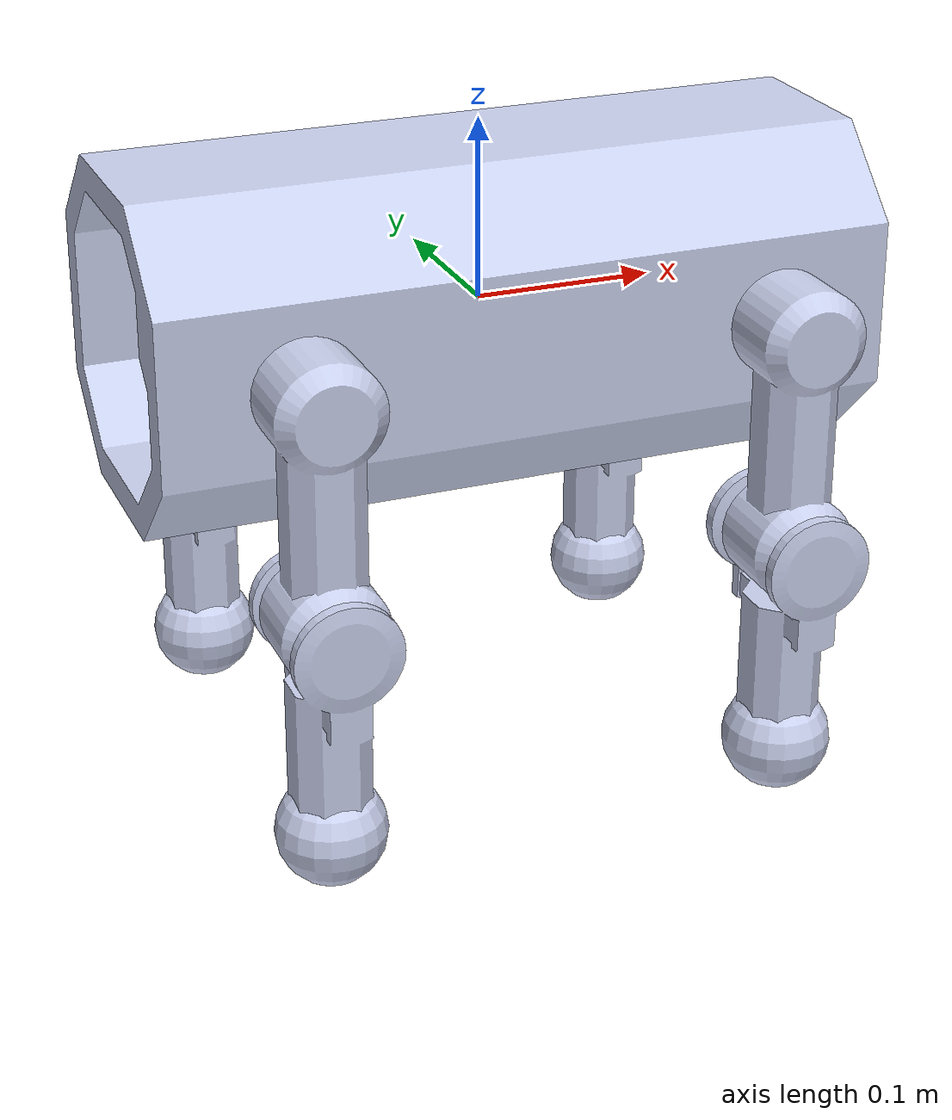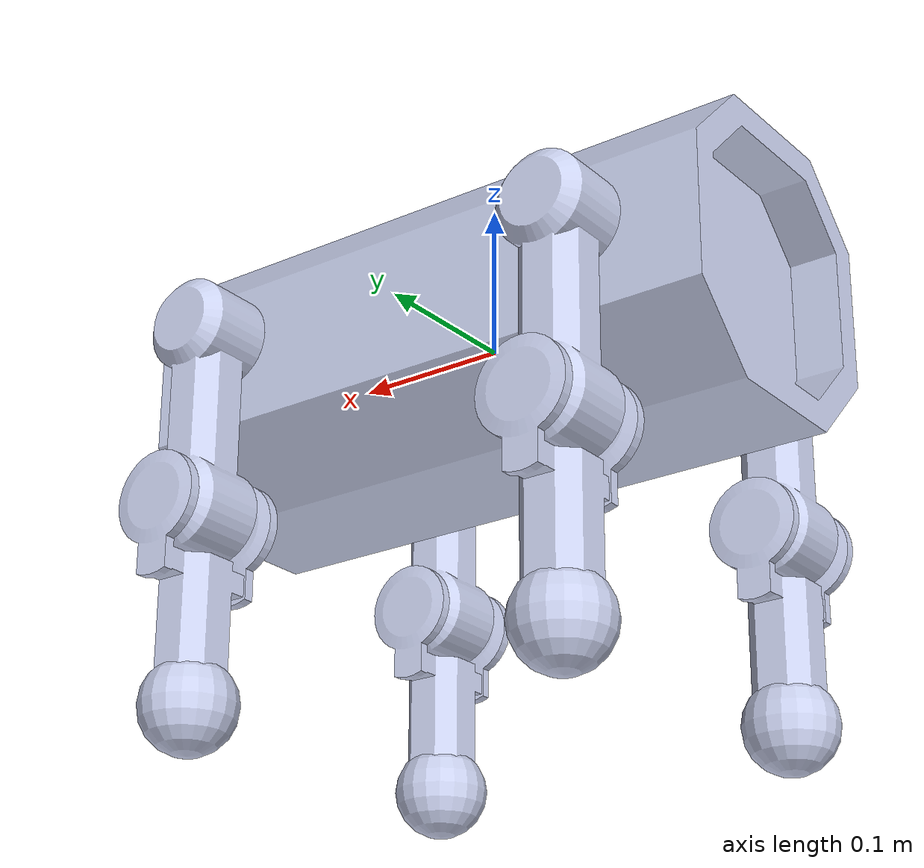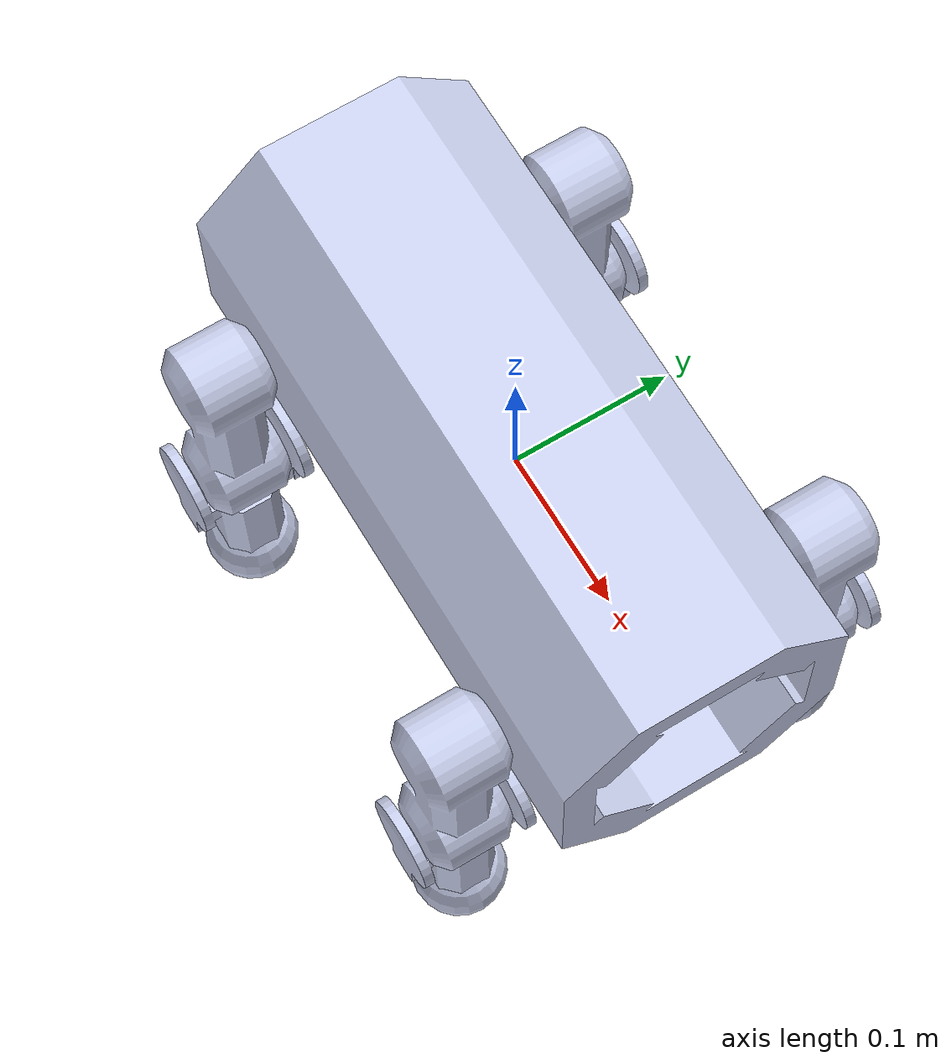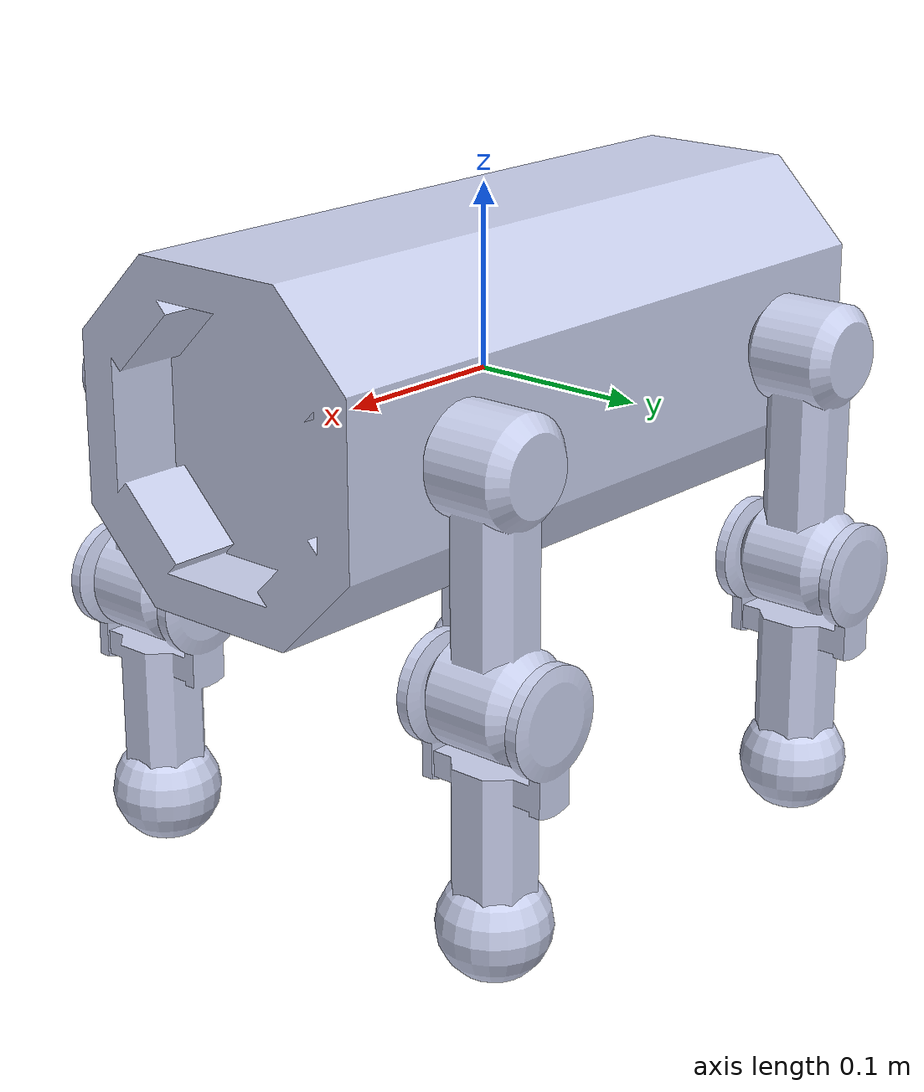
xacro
<?xml version="1.0"?>
<robot name="doggo_walker">

  <link name="base_link">
    <inertial>
      <origin xyz="0 0 0" rpy="0 0 0" />
      <mass value="1.4" />
      <inertia  ixx="0.93333333333333322e-3" ixy="0" ixz="0" iyy="0.7728466684691111e-3" iyz="0" izz="0.7728466684691111e-3" />
    </inertial>
    <visual>
      <origin xyz="0 0 0" rpy="0 0 0" />
      <geometry>
        <mesh filename="package://quad_walker/mesh/stl/body.stl" />
      </geometry>
      <material name="black">
        <color rgba="0.79216 0.81961 0.93333 1" />
      </material>
    </visual>
    <collision>
      <origin xyz="0 0 0" rpy="0 0 0" />
      <geometry>
        <mesh filename="package://quad_walker/mesh/stl/body.stl" />
      </geometry>
    </collision>
  </link>

  <joint name="FRFJ" type="revolute">
    <origin xyz="0.13 -0.12 0" rpy="0 0 0"></origin>
    <parent link="base_link"></parent>
    <child link="front_right_femur"></child>
    <axis xyz="0 1 0"></axis>
    <limit effort="30" lower="-1.4" upper="1.4" velocity="6"></limit>
  </joint>

  <link name="front_right_femur">
    <inertial>
      <origin xyz="0 0 -0.055" rpy="0 1.571 0" />
      <mass value="0.4" />
      <inertia  ixx="0.26666666666666666e-3" ixy="0" ixz="0" iyy="1.3500407131234775e-3" iyz="0" izz="1.3500407131234775e-3" />
 </inertial>
    <visual>
      <origin xyz="0 0 -0.055" rpy="0 0 1.571" />
      <geometry>
        <mesh filename="package://quad_walker/mesh/stl/femur.stl" />
      </geometry>
      <material name="black">
        <color rgba="0.79216 0.81961 0.93333 1" />
      </material>
    </visual>
    <collision>
      <origin xyz="0 0 -0.055" rpy="0 0 1.571" />
      <geometry>
        <mesh filename="package://quad_walker/mesh/stl/femur.stl" />
      </geometry>
    </collision>
  </link>

<joint name="FLFJ" type="revolute">
    <origin xyz="0.13 0.12 0" rpy="0 0 0"></origin>
    <parent link="base_link"></parent>
    <child link="front_left_femur"></child>
    <axis xyz="0 1 0"></axis>
    <limit effort="30" lower="-1.4" upper="1.4" velocity="6"></limit>
  </joint>

  <link name="front_left_femur">
    <inertial>
      <origin xyz="0 0 -0.055" rpy="0 1.571 0" />
      <mass value="0.4" />
      <inertia  ixx="0.26666666666666666e-3" ixy="0" ixz="0" iyy="1.3500407131234775e-3" iyz="0" izz="1.3500407131234775e-3" />
 </inertial>
    <visual>
      <origin xyz="0 0 -0.055" rpy="0 0 1.571" />
      <geometry>
        <mesh filename="package://quad_walker/mesh/stl/femur.stl" />
      </geometry>
      <material name="black">
        <color rgba="0.79216 0.81961 0.93333 1" />
      </material>
    </visual>
    <collision>
      <origin xyz="0 0 -0.055" rpy="0 0 1.571" />
      <geometry>
        <mesh filename="package://quad_walker/mesh/stl/femur.stl" />
      </geometry>
    </collision>
  </link>

<joint name="RRFJ" type="revolute">
    <origin xyz="-0.13 -0.12 0" rpy="0 0 0"></origin>
    <parent link="base_link"></parent>
    <child link="rear_right_femur"></child>
    <axis xyz="0 1 0"></axis>
    <limit effort="30" lower="-1.4" upper="1.4" velocity="6"></limit>
  </joint>

  <link name="rear_right_femur">
    <inertial>
      <origin xyz="0 0 -0.055" rpy="0 1.571 0" />
      <mass value="0.4" />
     <inertia  ixx="0.26666666666666666e-3" ixy="0" ixz="0" iyy="1.3500407131234775e-3" iyz="0" izz="1.3500407131234775e-3" />
  </inertial>
    <visual>
      <origin xyz="0 0 -0.055" rpy="0 0 1.571" />
      <geometry>
        <mesh filename="package://quad_walker/mesh/stl/femur.stl" />
      </geometry>
      <material name="black">
        <color rgba="0.79216 0.81961 0.93333 1" />
      </material>
    </visual>
    <collision>
      <origin xyz="0 0 -0.055" rpy="0 0 1.571" />
      <geometry>
        <mesh filename="package://quad_walker/mesh/stl/femur.stl" />
      </geometry>
    </collision>
  </link>

<joint name="RLFJ" type="revolute">
    <origin xyz="-0.13 0.12 0" rpy="0 0 0"></origin>
    <parent link="base_link"></parent>
    <child link="rear_left_femur"></child>
    <axis xyz="0 1 0"></axis>
    <limit effort="30" lower="-1.4" upper="1.4" velocity="6"></limit>
  </joint>

  <link name="rear_left_femur">
    <inertial>
      <origin xyz="0 0 -0.055" rpy="0 1.571 0" />
      <mass value="0.4" />
     <inertia  ixx="0.26666666666666666e-3" ixy="0" ixz="0" iyy="1.3500407131234775e-3" iyz="0" izz="1.3500407131234775e-3" />
 </inertial>
    <visual>
      <origin xyz="0 0 -0.055" rpy="0 0 1.571" />
      <geometry>
        <mesh filename="package://quad_walker/mesh/stl/femur.stl" />
      </geometry>
      <material name="black">
        <color rgba="0.79216 0.81961 0.93333 1" />
      </material>
    </visual>
    <collision>
      <origin xyz="0 0 -0.055" rpy="0 0 1.571" />
      <geometry>
        <mesh filename="package://quad_walker/mesh/stl/femur.stl" />
      </geometry>
    </collision>
  </link>

<joint name="FRLLJ" type="revolute">
    <origin xyz="0 0 -0.115" rpy="0 0 0"></origin>
    <parent link="front_right_femur"></parent>
    <child link="front_right_lower_leg"></child>
    <axis xyz="0 1 0"></axis>
    <limit effort="30" lower="-1.4" upper="0" velocity="6"></limit>
  </joint>

  <link name="front_right_lower_leg">
    <inertial>
      <origin xyz="0 0 -0.075" rpy="0 1.571 0" />
      <mass value="0.4" />
     <inertia  ixx="0.40013864055798504e-3" ixy="0" ixz="0" iyy="0.6219198715954392e-3" iyz="0" izz="0.7822468894428255e-3" /> </inertial>
    <visual>
      <origin xyz="0 0 -0.075" rpy="0 0 1.571" />
      <geometry>
        <mesh filename="package://quad_walker/mesh/stl/lower_leg.stl" />
      </geometry>
      <material name="black">
        <color rgba="0.79216 0.81961 0.93333 1" />
      </material>
    </visual>
    <collision>
      <origin xyz="0 0 -0.075" rpy="0 0 1.571" />
      <geometry>
        <mesh filename="package://quad_walker/mesh/stl/lower_leg.stl" />
      </geometry>
    </collision>
  </link>

<joint name="FLLLJ" type="revolute">
    <origin xyz="0 0 -0.115" rpy="0 0 0"></origin>
    <parent link="front_left_femur"></parent>
    <child link="front_left_lower_leg"></child>
    <axis xyz="0 1 0"></axis>
    <limit effort="30" lower="-1.4" upper="0" velocity="6"></limit>
  </joint>

  <link name="front_left_lower_leg">
    <inertial>
      <origin xyz="0 0 -0.075" rpy="0 1.571 0" />
      <mass value="0.4" />
     <inertia  ixx="0.40013864055798504e-3" ixy="0" ixz="0" iyy="0.6219198715954392e-3" iyz="0" izz="0.7822468894428255e-3" /> </inertial>
    <visual>
      <origin xyz="0 0 -0.075" rpy="0 0 1.571" />
      <geometry>
        <mesh filename="package://quad_walker/mesh/stl/lower_leg.stl" />
      </geometry>
      <material name="black">
        <color rgba="0.79216 0.81961 0.93333 1" />
      </material>
    </visual>
    <collision>
      <origin xyz="0 0 -0.075" rpy="0 0 1.571" />
      <geometry>
        <mesh filename="package://quad_walker/mesh/stl/lower_leg.stl" />
      </geometry>
    </collision>
  </link>

<joint name="RRLLJ" type="revolute">
    <origin xyz="0 0 -0.115" rpy="0 0 0"></origin>
    <parent link="rear_right_femur"></parent>
    <child link="rear_right_lower_leg"></child>
    <axis xyz="0 1 0"></axis>
    <limit effort="30" lower="-1.4" upper="0" velocity="6"></limit>
  </joint>

  <link name="rear_right_lower_leg">
    <inertial>
      <origin xyz="0 0 -0.075" rpy="0 1.571 0" />
      <mass value="0.4" />
      <inertia  ixx="0.40013864055798504e-3" ixy="0" ixz="0" iyy="0.6219198715954392e-3" iyz="0" izz="0.7822468894428255e-3" />  </inertial>
    <visual>
      <origin xyz="0 0 -0.075" rpy="0 0 1.571" />
      <geometry>
        <mesh filename="package://quad_walker/mesh/stl/lower_leg.stl" />
      </geometry>
      <material name="black">
        <color rgba="0.79216 0.81961 0.93333 1" />
      </material>
    </visual>
    <collision>
      <origin xyz="0 0 -0.075" rpy="0 0 1.571" />
      <geometry>
        <mesh filename="package://quad_walker/mesh/stl/lower_leg.stl" />
      </geometry>
    </collision>
  </link>

<joint name="RLLLJ" type="revolute">
    <origin xyz="0 0 -0.115" rpy="0 0 0"></origin>
    <parent link="rear_left_femur"></parent>
    <child link="rear_left_lower_leg"></child>
    <axis xyz="0 1 0"></axis>
    <limit effort="30" lower="-1.4" upper="0" velocity="6"></limit>
  </joint>

  <link name="rear_left_lower_leg">
    <inertial>
      <origin xyz="0 0 -0.075" rpy="0 1.571 0" />
      <mass value="0.4" />
    <inertia  ixx="0.40013864055798504e-3" ixy="0" ixz="0" iyy="0.6219198715954392e-3" iyz="0" izz="0.7822468894428255e-3" /> </inertial>
    <visual>
      <origin xyz="0 0 -0.075" rpy="0 0 1.571" />
      <geometry>
        <mesh filename="package://quad_walker/mesh/stl/lower_leg.stl" />
      </geometry>
      <material name="black">
        <color rgba="0.79216 0.81961 0.93333 1" />
      </material>
    </visual>
    <collision>
      <origin xyz="0 0 -0.075" rpy="0 0 1.571" />
      <geometry>
        <mesh filename="package://quad_walker/mesh/stl/lower_leg.stl" />
      </geometry>
    </collision>
  </link>

<joint name="FRCS" type="fixed">
    <origin xyz="0 0 -0.12" rpy="0 0 0"></origin>
    <parent link="front_right_lower_leg"></parent>
    <child link="front_right_contact_sensor"></child>
  </joint>

<link name="front_right_contact_sensor">
  <inertial>
    <origin xyz="0 0 0" rpy="0 0 0" />
    <mass value="0.1" />
   <inertia  ixx="3.600000000000001e-05" ixy="0" ixz="0" iyy="3.600000000000001e-05" iyz="0" izz="3.600000000000001e-05" />  </inertial>
  <visual>
    <origin xyz="0 0 0" rpy="0 0 0" />
    <geometry>
      <sphere radius="0.03"/>
    </geometry>
    <material name="black">
      <color rgba="0.79216 0.81961 0.93333 1" />
    </material>
  </visual>
  <collision>
    <origin xyz="0 0 0" rpy="0 0 0" />
    <geometry>
      <sphere radius="0.03"/>
    </geometry>
  </collision>
</link>

<joint name="FLCS" type="fixed">
    <origin xyz="0 0 -0.12" rpy="0 0 0"></origin>
    <parent link="front_left_lower_leg"></parent>
    <child link="front_left_contact_sensor"></child>
  </joint>

<link name="front_left_contact_sensor">
  <inertial>
    <origin xyz="0 0 0" rpy="0 0 0" />
    <mass value="0.1" />
  <inertia  ixx="3.600000000000001e-05" ixy="0" ixz="0" iyy="3.600000000000001e-05" iyz="0" izz="3.600000000000001e-05" /> </inertial>
  <visual>
    <origin xyz="0 0 0" rpy="0 0 0" />
    <geometry>
      <sphere radius="0.03"/>
    </geometry>
    <material name="black">
      <color rgba="0.79216 0.81961 0.93333 1" />
    </material>
  </visual>
  <collision>
    <origin xyz="0 0 0" rpy="0 0 0" />
    <geometry>
      <sphere radius="0.03"/>
    </geometry>
  </collision>
</link>

<joint name="RRCS" type="fixed">
    <origin xyz="0 0 -0.12" rpy="0 0 0"></origin>
    <parent link="rear_right_lower_leg"></parent>
    <child link="rear_right_contact_sensor"></child>
  </joint>

<link name="rear_right_contact_sensor">
  <inertial>
    <origin xyz="0 0 0" rpy="0 0 0" />
    <mass value="0.1" />
  <inertia  ixx="3.600000000000001e-05" ixy="0" ixz="0" iyy="3.600000000000001e-05" iyz="0" izz="3.600000000000001e-05" /> </inertial>
  <visual>
    <origin xyz="0 0 0" rpy="0 0 0" />
    <geometry>
      <sphere radius="0.03"/>
    </geometry>
    <material name="black">
      <color rgba="0.79216 0.81961 0.93333 1" />
    </material>
  </visual>
  <collision>
    <origin xyz="0 0 0" rpy="0 0 0" />
    <geometry>
      <sphere radius="0.03"/>
    </geometry>
  </collision>
</link>

<joint name="RLCS" type="fixed">
    <origin xyz="0 0 -0.12" rpy="0 0 0"></origin>
    <parent link="rear_left_lower_leg"></parent>
    <child link="rear_left_contact_sensor"></child>
  </joint>

<link name="rear_left_contact_sensor">
  <inertial>
    <origin xyz="0 0 0" rpy="0 0 0" />
    <mass value="0.1" />
 <inertia  ixx="3.600000000000001e-05" ixy="0" ixz="0" iyy="3.600000000000001e-05" iyz="0" izz="3.600000000000001e-05" /> </inertial>
  <visual>
    <origin xyz="0 0 0" rpy="0 0 0" />
    <geometry>
      <sphere radius="0.03"/>
    </geometry>
    <material name="black">
      <color rgba="0.79216 0.81961 0.93333 1" />
    </material>
  </visual>
  <collision>
    <origin xyz="0 0 0" rpy="0 0 0" />
    <geometry>
      <sphere radius="0.03"/>
    </geometry>
  </collision>
</link>

    <gazebo reference="base_link">
       <material>Gazebo/Orange</material>
       <selfCollide>true</selfCollide>
    </gazebo>

    <gazebo reference="front_right_femur">
       <selfCollide>true</selfCollide>
       <material>Gazebo/Blue</material>
    </gazebo>
      <gazebo reference="front_left_femur">
       <selfCollide>true</selfCollide>
       <material>Gazebo/Blue</material>
    </gazebo>
      <gazebo reference="rear_right_femur">
       <selfCollide>true</selfCollide>
       <material>Gazebo/Red</material>
    </gazebo>
      <gazebo reference="rear_left_femur">
       <selfCollide>true</selfCollide>
       <material>Gazebo/Red</material>
    </gazebo>

    <gazebo reference="front_right_lower_leg">
       <selfCollide>true</selfCollide>
       <material>Gazebo/Red</material>
    </gazebo>
    <gazebo reference="front_left_lower_leg">
       <selfCollide>true</selfCollide>
       <material>Gazebo/Red</material>
    </gazebo>
    <gazebo reference="rear_right_lower_leg">
       <selfCollide>true</selfCollide>
       <material>Gazebo/Red</material>
    </gazebo>
    <gazebo reference="rear_left_lower_leg">
       <selfCollide>true</selfCollide>
       <material>Gazebo/Red</material>
    </gazebo>

      <gazebo reference="front_right_contact_sensor">
       <material>Gazebo/Black</material>
        <mu1>9000</mu1>
        <mu2>9000</mu2>
        <kp>1000000.0</kp>
        <kd>10.0</kd>
        <minDepth>0.001</minDepth>
        <maxContacts>2</maxContacts>
      <sensor name="front_right_contact_sensor" type="contact">
          <always_on>true</always_on>
          <contact>
            <collision>front_right_lower_leg_fixed_joint_lump__front_right_contact_sensor_collision_1</collision>
          </contact>
          <plugin name="bumper0_plugin" filename="libgazebo_ros_bumper.so">
            <bumperTopicName>front_right_contact_sensor</bumperTopicName>
            <frameName>front_right_contact_sensor</frameName>
            <updateRate>50</updateRate>
          </plugin>
        </sensor>
      </gazebo>

      <gazebo reference="front_left_contact_sensor">
       <material>Gazebo/Black</material>
       <mu1>9000</mu1>
        <mu2>9000</mu2>
        <kp>1000000.0</kp>
        <kd>10.0</kd>
        <minDepth>0.001</minDepth>
        <maxContacts>2</maxContacts>
        <sensor name="front_left_contact_sensor" type="contact">
          <always_on>true</always_on>
          <contact>
            <collision>front_left_lower_leg_fixed_joint_lump__front_left_contact_sensor_collision_1</collision>
          </contact>
          <plugin name="bumper0_plugin" filename="libgazebo_ros_bumper.so">
            <bumperTopicName>front_left_contact_sensor</bumperTopicName>
            <frameName>front_left_contact_sensor</frameName>
            <updateRate>50</updateRate>

          </plugin>
        </sensor>
    </gazebo>

      <gazebo reference="rear_right_contact_sensor">
       <material>Gazebo/Black</material>
       <mu1>9000</mu1>
        <mu2>9000</mu2>
        <kp>1000000.0</kp>
        <kd>10.0</kd>
        <minDepth>0.001</minDepth>
        <maxContacts>2</maxContacts>
        <sensor name="rear_right_contact_sensor" type="contact">
          <always_on>true</always_on>
          <contact>
            <collision>rear_right_lower_leg_fixed_joint_lump__rear_right_contact_sensor_collision_1</collision>
          </contact>
          <plugin name="bumper0_plugin" filename="libgazebo_ros_bumper.so">
            <bumperTopicName>rear_right_contact_sensor</bumperTopicName>
            <frameName>rear_right_contact_sensor</frameName>
            <updateRate>50</updateRate>

          </plugin>
        </sensor>
    </gazebo>

      <gazebo reference="rear_left_contact_sensor">
       <material>Gazebo/Black</material>
       <mu1>9000</mu1>
        <mu2>9000</mu2>
        <kp>1000000.0</kp>
        <kd>10.0</kd>
        <minDepth>0.001</minDepth>
        <maxContacts>2</maxContacts>
        <sensor name="rear_left_contact_sensor" type="contact">
          <always_on>true</always_on>
          <contact>
            <collision>rear_left_lower_leg_fixed_joint_lump__rear_left_contact_sensor_collision_1</collision>
          </contact>
          <plugin name="bumper0_plugin" filename="libgazebo_ros_bumper.so">
            <bumperTopicName>rear_left_contact_sensor</bumperTopicName>
            <frameName>rear_left_contact_sensor</frameName>
            <updateRate>50</updateRate>

          </plugin>
        </sensor>
    </gazebo>

 <gazebo>
        <plugin name="gazebo_ros_imu_controller" filename="libgazebo_ros_imu.so">
          <robotNamespace></robotNamespace>
          <topicName>imu/data</topicName>
          <serviceName>imu/service</serviceName>
          <bodyName>base_link</bodyName>
          <gaussianNoise>0</gaussianNoise>
          <rpyOffsets>0 0 0</rpyOffsets>
          <alwaysOn>true</alwaysOn>
          <gaussianNoise>0</gaussianNoise>
        </plugin>
    </gazebo>

    <gazebo>
        <plugin name="p3d_base_controller" filename="libgazebo_ros_p3d.so">
            <alwaysOn>true</alwaysOn>
            <bodyName>base_link</bodyName>
            <updateRate>50</updateRate>
            <topicName>odom</topicName>
            <gaussianNoise>0.01</gaussianNoise>
            <frameName>world</frameName>
            <xyzOffsets>0 0 0</xyzOffsets>
            <rpyOffsets>0 0 0</rpyOffsets>
        </plugin>
    </gazebo>

  <gazebo>
  <plugin name="gazebo_ros_control" filename="libgazebo_ros_control.so">
  <robotSimType>gazebo_ros_control/DefaultRobotHWSim</robotSimType>

  </plugin>
  </gazebo>

  <transmission name="tran1">
    <type>transmission_interface/SimpleTransmission</type>
    <joint name="FRFJ">
      <hardwareInterface>hardware_interface/PositionJointInterface</hardwareInterface>
    </joint>
    <actuator name="motor1">
      <hardwareInterface>hardware_interface/PositionJointInterface</hardwareInterface>
      <mechanicalReduction>1</mechanicalReduction>
    </actuator>
  </transmission>

  <transmission name="tran2">
    <type>transmission_interface/SimpleTransmission</type>
    <joint name="FLFJ">
      <hardwareInterface>hardware_interface/PositionJointInterface</hardwareInterface>
    </joint>
    <actuator name="motor2">
      <hardwareInterface>hardware_interface/PositionJointInterface</hardwareInterface>
      <mechanicalReduction>1</mechanicalReduction>
    </actuator>
  </transmission>

  <transmission name="tran3">
    <type>transmission_interface/SimpleTransmission</type>
    <joint name="RRFJ">
      <hardwareInterface>hardware_interface/PositionJointInterface</hardwareInterface>
    </joint>
    <actuator name="motor3">
      <hardwareInterface>hardware_interface/PositionJointInterface</hardwareInterface>
      <mechanicalReduction>1</mechanicalReduction>
    </actuator>
  </transmission>

  <transmission name="tran4">
    <type>transmission_interface/SimpleTransmission</type>
    <joint name="RLFJ">
      <hardwareInterface>hardware_interface/PositionJointInterface</hardwareInterface>
    </joint>
    <actuator name="motor4">
      <hardwareInterface>hardware_interface/PositionJointInterface</hardwareInterface>
      <mechanicalReduction>1</mechanicalReduction>
    </actuator>
  </transmission>

  <transmission name="tran5">
    <type>transmission_interface/SimpleTransmission</type>
    <joint name="FRLLJ">
      <hardwareInterface>hardware_interface/PositionJointInterface</hardwareInterface>
    </joint>
    <actuator name="motor5">
      <hardwareInterface>hardware_interface/PositionJointInterface</hardwareInterface>
      <mechanicalReduction>1</mechanicalReduction>
    </actuator>
  </transmission>

  <transmission name="tran6">
    <type>transmission_interface/SimpleTransmission</type>
    <joint name="FLLLJ">
      <hardwareInterface>hardware_interface/PositionJointInterface</hardwareInterface>
    </joint>
    <actuator name="motor6">
      <hardwareInterface>hardware_interface/PositionJointInterface</hardwareInterface>
      <mechanicalReduction>1</mechanicalReduction>
    </actuator>
  </transmission>

  <transmission name="tran7">
    <type>transmission_interface/SimpleTransmission</type>
    <joint name="RRLLJ">
      <hardwareInterface>hardware_interface/PositionJointInterface</hardwareInterface>
    </joint>
    <actuator name="motor7">
      <hardwareInterface>hardware_interface/PositionJointInterface</hardwareInterface>
      <mechanicalReduction>1</mechanicalReduction>
    </actuator>
  </transmission>

  <transmission name="tran8">
    <type>transmission_interface/SimpleTransmission</type>
    <joint name="RLLLJ">
      <hardwareInterface>hardware_interface/PositionJointInterface</hardwareInterface>
    </joint>
    <actuator name="motor8">
      <hardwareInterface>hardware_interface/PositionJointInterface</hardwareInterface>
      <mechanicalReduction>1</mechanicalReduction>
    </actuator>
  </transmission>

  </robot>
